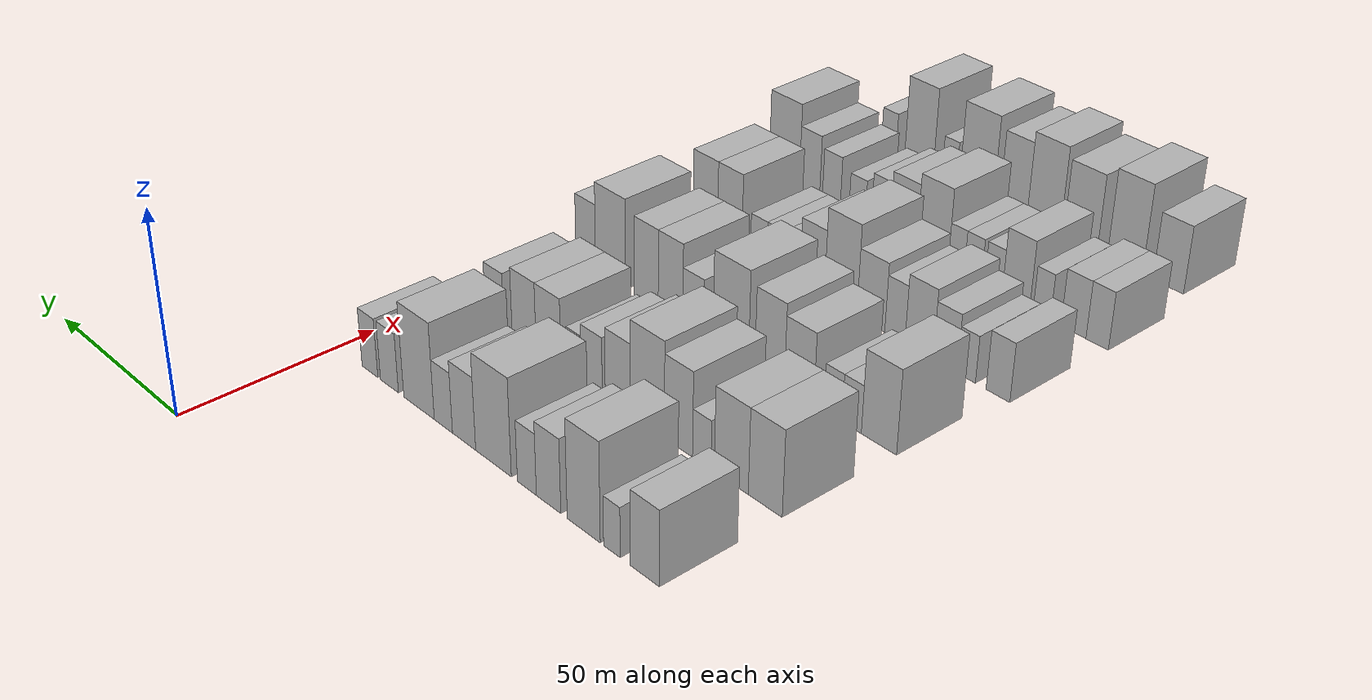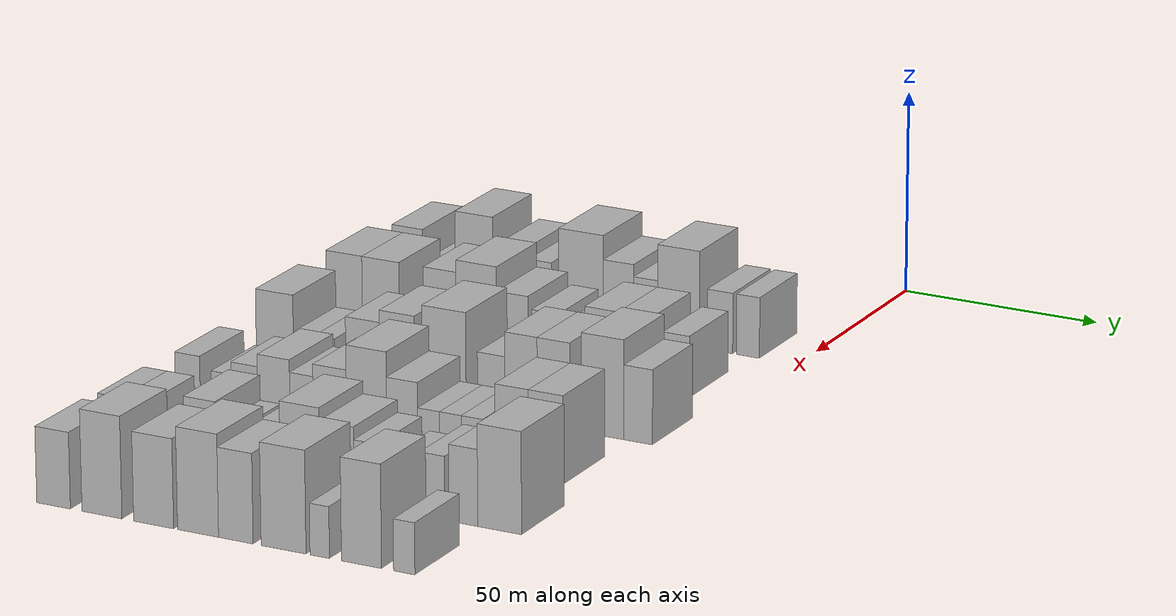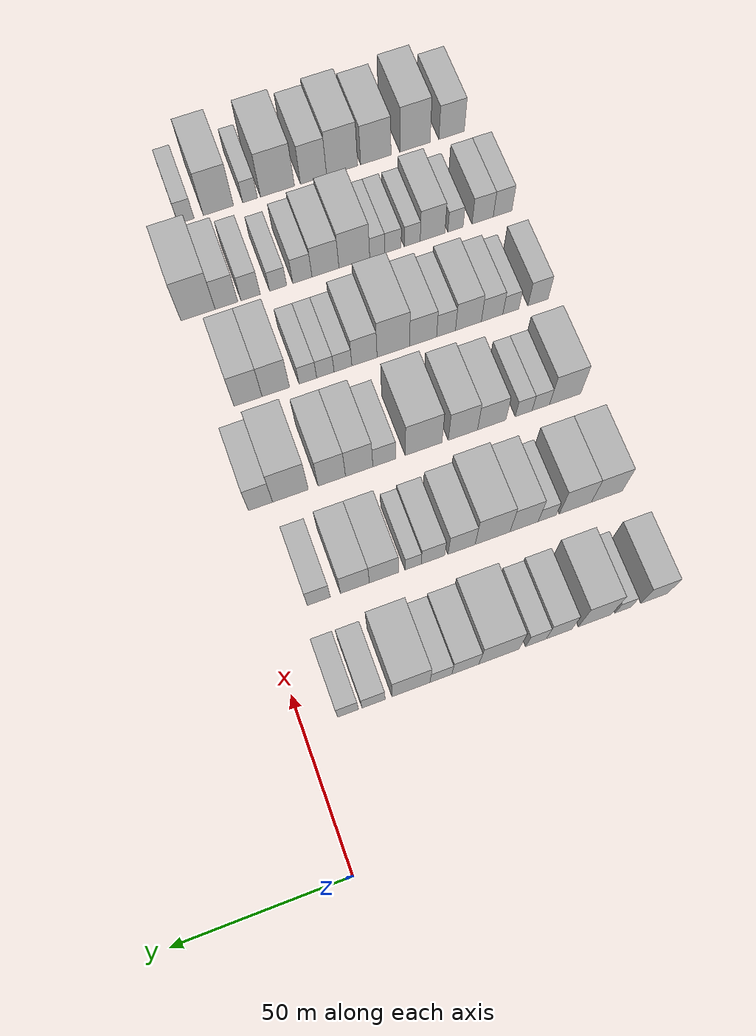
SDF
<sdf version="1.6">
 <world name="default">
  <model name="building_49">
   <static>1</static>
   <pose>50.0000 -104.2475 0 0.000000 0.000000 0.000000</pose>
   <link name="link">
    <pose>0 0 9.00 0 0 0</pose>
    <collision name="collision"><geometry><box><size>20.0000 8.3414 18.0000</size></box></geometry></collision>
    <visual name="visual">
     <cast_shadows>0</cast_shadows>
     <geometry><box><size>20.0000 8.3414 18.0000</size></box></geometry>
     <material>
      <script>
       <uri>model://HANNAS_wall/materials/scripts</uri>
       <uri>model://HANNAS_wall/materials/textures</uri>
       <name>vrc/HANNAS_wall</name>
      </script>
     </material>
    </visual>
   </link>
  </model>
  <model name="building_50">
   <static>1</static>
   <pose>50.0000 -94.6067 0 0.000000 0.000000 0.000000</pose>
   <link name="link">
    <pose>0 0 6.00 0 0 0</pose>
    <collision name="collision"><geometry><box><size>20.0000 4.9403 12.0000</size></box></geometry></collision>
    <visual name="visual">
     <cast_shadows>0</cast_shadows>
     <geometry><box><size>20.0000 4.9403 12.0000</size></box></geometry>
     <material>
      <script>
       <uri>model://HANNAS_wall/materials/scripts</uri>
       <uri>model://HANNAS_wall/materials/textures</uri>
       <name>vrc/HANNAS_wall</name>
      </script>
     </material>
    </visual>
   </link>
  </model>
  <model name="building_51">
   <static>1</static>
   <pose>50.0000 -86.0847 0 0.000000 0.000000 0.000000</pose>
   <link name="link">
    <pose>0 0 12.00 0 0 0</pose>
    <collision name="collision"><geometry><box><size>20.0000 10.1037 24.0000</size></box></geometry></collision>
    <visual name="visual">
     <cast_shadows>0</cast_shadows>
     <geometry><box><size>20.0000 10.1037 24.0000</size></box></geometry>
     <material>
      <script>
       <uri>model://HANNAS_wall/materials/scripts</uri>
       <uri>model://HANNAS_wall/materials/textures</uri>
       <name>vrc/HANNAS_wall</name>
      </script>
     </material>
    </visual>
   </link>
  </model>
  <model name="building_52">
   <static>1</static>
   <pose>50.0000 -75.1629 0 0.000000 0.000000 0.000000</pose>
   <link name="link">
    <pose>0 0 9.00 0 0 0</pose>
    <collision name="collision"><geometry><box><size>20.0000 7.7400 18.0000</size></box></geometry></collision>
    <visual name="visual">
     <cast_shadows>0</cast_shadows>
     <geometry><box><size>20.0000 7.7400 18.0000</size></box></geometry>
     <material>
      <script>
       <uri>model://HANNAS_wall/materials/scripts</uri>
       <uri>model://HANNAS_wall/materials/textures</uri>
       <name>vrc/HANNAS_wall</name>
      </script>
     </material>
    </visual>
   </link>
  </model>
  <model name="building_53">
   <static>1</static>
   <pose>50.0000 -68.2267 0 0.000000 0.000000 0.000000</pose>
   <link name="link">
    <pose>0 0 7.50 0 0 0</pose>
    <collision name="collision"><geometry><box><size>20.0000 6.1323 15.0000</size></box></geometry></collision>
    <visual name="visual">
     <cast_shadows>0</cast_shadows>
     <geometry><box><size>20.0000 6.1323 15.0000</size></box></geometry>
     <material>
      <script>
       <uri>model://HANNAS_wall/materials/scripts</uri>
       <uri>model://HANNAS_wall/materials/textures</uri>
       <name>vrc/HANNAS_wall</name>
      </script>
     </material>
    </visual>
   </link>
  </model>
  <model name="building_54">
   <static>1</static>
   <pose>50.0000 -57.1812 0 0.000000 0.000000 0.000000</pose>
   <link name="link">
    <pose>0 0 12.00 0 0 0</pose>
    <collision name="collision"><geometry><box><size>20.0000 11.9588 24.0000</size></box></geometry></collision>
    <visual name="visual">
     <cast_shadows>0</cast_shadows>
     <geometry><box><size>20.0000 11.9588 24.0000</size></box></geometry>
     <material>
      <script>
       <uri>model://HANNAS_wall/materials/scripts</uri>
       <uri>model://HANNAS_wall/materials/textures</uri>
       <name>vrc/HANNAS_wall</name>
      </script>
     </material>
    </visual>
   </link>
  </model>
  <model name="building_55">
   <static>1</static>
   <pose>50.0000 -47.1897 0 0.000000 0.000000 0.000000</pose>
   <link name="link">
    <pose>0 0 9.00 0 0 0</pose>
    <collision name="collision"><geometry><box><size>20.0000 8.0243 18.0000</size></box></geometry></collision>
    <visual name="visual">
     <cast_shadows>0</cast_shadows>
     <geometry><box><size>20.0000 8.0243 18.0000</size></box></geometry>
     <material>
      <script>
       <uri>model://HANNAS_wall/materials/scripts</uri>
       <uri>model://HANNAS_wall/materials/textures</uri>
       <name>vrc/HANNAS_wall</name>
      </script>
     </material>
    </visual>
   </link>
  </model>
  <model name="building_56">
   <static>1</static>
   <pose>50.0000 -39.9663 0 0.000000 0.000000 0.000000</pose>
   <link name="link">
    <pose>0 0 7.50 0 0 0</pose>
    <collision name="collision"><geometry><box><size>20.0000 6.4225 15.0000</size></box></geometry></collision>
    <visual name="visual">
     <cast_shadows>0</cast_shadows>
     <geometry><box><size>20.0000 6.4225 15.0000</size></box></geometry>
     <material>
      <script>
       <uri>model://HANNAS_wall/materials/scripts</uri>
       <uri>model://HANNAS_wall/materials/textures</uri>
       <name>vrc/HANNAS_wall</name>
      </script>
     </material>
    </visual>
   </link>
  </model>
  <model name="building_57">
   <static>1</static>
   <pose>50.0000 -31.2169 0 0.000000 0.000000 0.000000</pose>
   <link name="link">
    <pose>0 0 12.00 0 0 0</pose>
    <collision name="collision"><geometry><box><size>20.0000 11.0762 24.0000</size></box></geometry></collision>
    <visual name="visual">
     <cast_shadows>0</cast_shadows>
     <geometry><box><size>20.0000 11.0762 24.0000</size></box></geometry>
     <material>
      <script>
       <uri>model://HANNAS_wall/materials/scripts</uri>
       <uri>model://HANNAS_wall/materials/textures</uri>
       <name>vrc/HANNAS_wall</name>
      </script>
     </material>
    </visual>
   </link>
  </model>
  <model name="building_58">
   <static>1</static>
   <pose>50.0000 -20.3244 0 0.000000 0.000000 0.000000</pose>
   <link name="link">
    <pose>0 0 7.50 0 0 0</pose>
    <collision name="collision"><geometry><box><size>20.0000 6.7090 15.0000</size></box></geometry></collision>
    <visual name="visual">
     <cast_shadows>0</cast_shadows>
     <geometry><box><size>20.0000 6.7090 15.0000</size></box></geometry>
     <material>
      <script>
       <uri>model://HANNAS_wall/materials/scripts</uri>
       <uri>model://HANNAS_wall/materials/textures</uri>
       <name>vrc/HANNAS_wall</name>
      </script>
     </material>
    </visual>
   </link>
  </model>
  <model name="building_59">
   <static>1</static>
   <pose>50.0000 -12.9591 0 0.000000 0.000000 0.000000</pose>
   <link name="link">
    <pose>0 0 7.50 0 0 0</pose>
    <collision name="collision"><geometry><box><size>20.0000 6.0215 15.0000</size></box></geometry></collision>
    <visual name="visual">
     <cast_shadows>0</cast_shadows>
     <geometry><box><size>20.0000 6.0215 15.0000</size></box></geometry>
     <material>
      <script>
       <uri>model://HANNAS_wall/materials/scripts</uri>
       <uri>model://HANNAS_wall/materials/textures</uri>
       <name>vrc/HANNAS_wall</name>
      </script>
     </material>
    </visual>
   </link>
  </model>
  <model name="building_168">
   <static>1</static>
   <pose>82.0000 -103.5564 0 0.000000 0.000000 0.000000</pose>
   <link name="link">
    <pose>0 0 10.50 0 0 0</pose>
    <collision name="collision"><geometry><box><size>20.0000 9.7104 21.0000</size></box></geometry></collision>
    <visual name="visual">
     <cast_shadows>0</cast_shadows>
     <geometry><box><size>20.0000 9.7104 21.0000</size></box></geometry>
     <material>
      <script>
       <uri>model://HANNAS_wall/materials/scripts</uri>
       <uri>model://HANNAS_wall/materials/textures</uri>
       <name>vrc/HANNAS_wall</name>
      </script>
     </material>
    </visual>
   </link>
  </model>
  <model name="building_169">
   <static>1</static>
   <pose>82.0000 -93.7058 0 0.000000 0.000000 0.000000</pose>
   <link name="link">
    <pose>0 0 10.50 0 0 0</pose>
    <collision name="collision"><geometry><box><size>20.0000 9.9907 21.0000</size></box></geometry></collision>
    <visual name="visual">
     <cast_shadows>0</cast_shadows>
     <geometry><box><size>20.0000 9.9907 21.0000</size></box></geometry>
     <material>
      <script>
       <uri>model://HANNAS_wall/materials/scripts</uri>
       <uri>model://HANNAS_wall/materials/textures</uri>
       <name>vrc/HANNAS_wall</name>
      </script>
     </material>
    </visual>
   </link>
  </model>
  <model name="building_170">
   <static>1</static>
   <pose>82.0000 -84.9278 0 0.000000 0.000000 0.000000</pose>
   <link name="link">
    <pose>0 0 6.00 0 0 0</pose>
    <collision name="collision"><geometry><box><size>20.0000 5.5653 12.0000</size></box></geometry></collision>
    <visual name="visual">
     <cast_shadows>0</cast_shadows>
     <geometry><box><size>20.0000 5.5653 12.0000</size></box></geometry>
     <material>
      <script>
       <uri>model://HANNAS_wall/materials/scripts</uri>
       <uri>model://HANNAS_wall/materials/textures</uri>
       <name>vrc/HANNAS_wall</name>
      </script>
     </material>
    </visual>
   </link>
  </model>
  <model name="building_171">
   <static>1</static>
   <pose>82.0000 -77.8008 0 0.000000 0.000000 0.000000</pose>
   <link name="link">
    <pose>0 0 10.50 0 0 0</pose>
    <collision name="collision"><geometry><box><size>20.0000 8.6886 21.0000</size></box></geometry></collision>
    <visual name="visual">
     <cast_shadows>0</cast_shadows>
     <geometry><box><size>20.0000 8.6886 21.0000</size></box></geometry>
     <material>
      <script>
       <uri>model://HANNAS_wall/materials/scripts</uri>
       <uri>model://HANNAS_wall/materials/textures</uri>
       <name>vrc/HANNAS_wall</name>
      </script>
     </material>
    </visual>
   </link>
  </model>
  <model name="building_172">
   <static>1</static>
   <pose>82.0000 -68.0688 0 0.000000 0.000000 0.000000</pose>
   <link name="link">
    <pose>0 0 12.00 0 0 0</pose>
    <collision name="collision"><geometry><box><size>20.0000 10.7755 24.0000</size></box></geometry></collision>
    <visual name="visual">
     <cast_shadows>0</cast_shadows>
     <geometry><box><size>20.0000 10.7755 24.0000</size></box></geometry>
     <material>
      <script>
       <uri>model://HANNAS_wall/materials/scripts</uri>
       <uri>model://HANNAS_wall/materials/textures</uri>
       <name>vrc/HANNAS_wall</name>
      </script>
     </material>
    </visual>
   </link>
  </model>
  <model name="building_173">
   <static>1</static>
   <pose>82.0000 -58.5454 0 0.000000 0.000000 0.000000</pose>
   <link name="link">
    <pose>0 0 9.00 0 0 0</pose>
    <collision name="collision"><geometry><box><size>20.0000 8.2712 18.0000</size></box></geometry></collision>
    <visual name="visual">
     <cast_shadows>0</cast_shadows>
     <geometry><box><size>20.0000 8.2712 18.0000</size></box></geometry>
     <material>
      <script>
       <uri>model://HANNAS_wall/materials/scripts</uri>
       <uri>model://HANNAS_wall/materials/textures</uri>
       <name>vrc/HANNAS_wall</name>
      </script>
     </material>
    </visual>
   </link>
  </model>
  <model name="building_174">
   <static>1</static>
   <pose>82.0000 -49.8387 0 0.000000 0.000000 0.000000</pose>
   <link name="link">
    <pose>0 0 7.50 0 0 0</pose>
    <collision name="collision"><geometry><box><size>20.0000 7.1422 15.0000</size></box></geometry></collision>
    <visual name="visual">
     <cast_shadows>0</cast_shadows>
     <geometry><box><size>20.0000 7.1422 15.0000</size></box></geometry>
     <material>
      <script>
       <uri>model://HANNAS_wall/materials/scripts</uri>
       <uri>model://HANNAS_wall/materials/textures</uri>
       <name>vrc/HANNAS_wall</name>
      </script>
     </material>
    </visual>
   </link>
  </model>
  <model name="building_175">
   <static>1</static>
   <pose>82.0000 -43.8366 0 0.000000 0.000000 0.000000</pose>
   <link name="link">
    <pose>0 0 6.00 0 0 0</pose>
    <collision name="collision"><geometry><box><size>20.0000 4.8619 12.0000</size></box></geometry></collision>
    <visual name="visual">
     <cast_shadows>0</cast_shadows>
     <geometry><box><size>20.0000 4.8619 12.0000</size></box></geometry>
     <material>
      <script>
       <uri>model://HANNAS_wall/materials/scripts</uri>
       <uri>model://HANNAS_wall/materials/textures</uri>
       <name>vrc/HANNAS_wall</name>
      </script>
     </material>
    </visual>
   </link>
  </model>
  <model name="building_176">
   <static>1</static>
   <pose>82.0000 -35.0411 0 0.000000 0.000000 0.000000</pose>
   <link name="link">
    <pose>0 0 9.00 0 0 0</pose>
    <collision name="collision"><geometry><box><size>20.0000 8.7293 18.0000</size></box></geometry></collision>
    <visual name="visual">
     <cast_shadows>0</cast_shadows>
     <geometry><box><size>20.0000 8.7293 18.0000</size></box></geometry>
     <material>
      <script>
       <uri>model://HANNAS_wall/materials/scripts</uri>
       <uri>model://HANNAS_wall/materials/textures</uri>
       <name>vrc/HANNAS_wall</name>
      </script>
     </material>
    </visual>
   </link>
  </model>
  <model name="building_177">
   <static>1</static>
   <pose>82.0000 -26.3602 0 0.000000 0.000000 0.000000</pose>
   <link name="link">
    <pose>0 0 9.00 0 0 0</pose>
    <collision name="collision"><geometry><box><size>20.0000 8.6325 18.0000</size></box></geometry></collision>
    <visual name="visual">
     <cast_shadows>0</cast_shadows>
     <geometry><box><size>20.0000 8.6325 18.0000</size></box></geometry>
     <material>
      <script>
       <uri>model://HANNAS_wall/materials/scripts</uri>
       <uri>model://HANNAS_wall/materials/textures</uri>
       <name>vrc/HANNAS_wall</name>
      </script>
     </material>
    </visual>
   </link>
  </model>
  <model name="building_178">
   <static>1</static>
   <pose>82.0000 -15.6247 0 0.000000 0.000000 0.000000</pose>
   <link name="link">
    <pose>0 0 7.50 0 0 0</pose>
    <collision name="collision"><geometry><box><size>20.0000 6.8386 15.0000</size></box></geometry></collision>
    <visual name="visual">
     <cast_shadows>0</cast_shadows>
     <geometry><box><size>20.0000 6.8386 15.0000</size></box></geometry>
     <material>
      <script>
       <uri>model://HANNAS_wall/materials/scripts</uri>
       <uri>model://HANNAS_wall/materials/textures</uri>
       <name>vrc/HANNAS_wall</name>
      </script>
     </material>
    </visual>
   </link>
  </model>
  <model name="building_283">
   <static>1</static>
   <pose>114.0000 -103.9990 0 0.000000 0.000000 0.000000</pose>
   <link name="link">
    <pose>0 0 10.50 0 0 0</pose>
    <collision name="collision"><geometry><box><size>20.0000 9.9668 21.0000</size></box></geometry></collision>
    <visual name="visual">
     <cast_shadows>0</cast_shadows>
     <geometry><box><size>20.0000 9.9668 21.0000</size></box></geometry>
     <material>
      <script>
       <uri>model://HANNAS_wall/materials/scripts</uri>
       <uri>model://HANNAS_wall/materials/textures</uri>
       <name>vrc/HANNAS_wall</name>
      </script>
     </material>
    </visual>
   </link>
  </model>
  <model name="building_284">
   <static>1</static>
   <pose>114.0000 -96.2114 0 0.000000 0.000000 0.000000</pose>
   <link name="link">
    <pose>0 0 6.00 0 0 0</pose>
    <collision name="collision"><geometry><box><size>20.0000 5.6083 12.0000</size></box></geometry></collision>
    <visual name="visual">
     <cast_shadows>0</cast_shadows>
     <geometry><box><size>20.0000 5.6083 12.0000</size></box></geometry>
     <material>
      <script>
       <uri>model://HANNAS_wall/materials/scripts</uri>
       <uri>model://HANNAS_wall/materials/textures</uri>
       <name>vrc/HANNAS_wall</name>
      </script>
     </material>
    </visual>
   </link>
  </model>
  <model name="building_285">
   <static>1</static>
   <pose>114.0000 -90.7280 0 0.000000 0.000000 0.000000</pose>
   <link name="link">
    <pose>0 0 6.00 0 0 0</pose>
    <collision name="collision"><geometry><box><size>20.0000 5.3585 12.0000</size></box></geometry></collision>
    <visual name="visual">
     <cast_shadows>0</cast_shadows>
     <geometry><box><size>20.0000 5.3585 12.0000</size></box></geometry>
     <material>
      <script>
       <uri>model://HANNAS_wall/materials/scripts</uri>
       <uri>model://HANNAS_wall/materials/textures</uri>
       <name>vrc/HANNAS_wall</name>
      </script>
     </material>
    </visual>
   </link>
  </model>
  <model name="building_286">
   <static>1</static>
   <pose>114.0000 -80.5575 0 0.000000 0.000000 0.000000</pose>
   <link name="link">
    <pose>0 0 9.00 0 0 0</pose>
    <collision name="collision"><geometry><box><size>20.0000 8.9825 18.0000</size></box></geometry></collision>
    <visual name="visual">
     <cast_shadows>0</cast_shadows>
     <geometry><box><size>20.0000 8.9825 18.0000</size></box></geometry>
     <material>
      <script>
       <uri>model://HANNAS_wall/materials/scripts</uri>
       <uri>model://HANNAS_wall/materials/textures</uri>
       <name>vrc/HANNAS_wall</name>
      </script>
     </material>
    </visual>
   </link>
  </model>
  <model name="building_287">
   <static>1</static>
   <pose>114.0000 -71.4640 0 0.000000 0.000000 0.000000</pose>
   <link name="link">
    <pose>0 0 10.50 0 0 0</pose>
    <collision name="collision"><geometry><box><size>20.0000 9.2046 21.0000</size></box></geometry></collision>
    <visual name="visual">
     <cast_shadows>0</cast_shadows>
     <geometry><box><size>20.0000 9.2046 21.0000</size></box></geometry>
     <material>
      <script>
       <uri>model://HANNAS_wall/materials/scripts</uri>
       <uri>model://HANNAS_wall/materials/textures</uri>
       <name>vrc/HANNAS_wall</name>
      </script>
     </material>
    </visual>
   </link>
  </model>
  <model name="building_288">
   <static>1</static>
   <pose>114.0000 -59.1335 0 0.000000 0.000000 0.000000</pose>
   <link name="link">
    <pose>0 0 12.00 0 0 0</pose>
    <collision name="collision"><geometry><box><size>20.0000 11.4564 24.0000</size></box></geometry></collision>
    <visual name="visual">
     <cast_shadows>0</cast_shadows>
     <geometry><box><size>20.0000 11.4564 24.0000</size></box></geometry>
     <material>
      <script>
       <uri>model://HANNAS_wall/materials/scripts</uri>
       <uri>model://HANNAS_wall/materials/textures</uri>
       <name>vrc/HANNAS_wall</name>
      </script>
     </material>
    </visual>
   </link>
  </model>
  <model name="building_289">
   <static>1</static>
   <pose>114.0000 -46.8817 0 0.000000 0.000000 0.000000</pose>
   <link name="link">
    <pose>0 0 7.50 0 0 0</pose>
    <collision name="collision"><geometry><box><size>20.0000 7.0471 15.0000</size></box></geometry></collision>
    <visual name="visual">
     <cast_shadows>0</cast_shadows>
     <geometry><box><size>20.0000 7.0471 15.0000</size></box></geometry>
     <material>
      <script>
       <uri>model://HANNAS_wall/materials/scripts</uri>
       <uri>model://HANNAS_wall/materials/textures</uri>
       <name>vrc/HANNAS_wall</name>
      </script>
     </material>
    </visual>
   </link>
  </model>
  <model name="building_290">
   <static>1</static>
   <pose>114.0000 -39.1507 0 0.000000 0.000000 0.000000</pose>
   <link name="link">
    <pose>0 0 10.50 0 0 0</pose>
    <collision name="collision"><geometry><box><size>20.0000 8.4151 21.0000</size></box></geometry></collision>
    <visual name="visual">
     <cast_shadows>0</cast_shadows>
     <geometry><box><size>20.0000 8.4151 21.0000</size></box></geometry>
     <material>
      <script>
       <uri>model://HANNAS_wall/materials/scripts</uri>
       <uri>model://HANNAS_wall/materials/textures</uri>
       <name>vrc/HANNAS_wall</name>
      </script>
     </material>
    </visual>
   </link>
  </model>
  <model name="building_291">
   <static>1</static>
   <pose>114.0000 -30.7255 0 0.000000 0.000000 0.000000</pose>
   <link name="link">
    <pose>0 0 10.50 0 0 0</pose>
    <collision name="collision"><geometry><box><size>20.0000 8.4353 21.0000</size></box></geometry></collision>
    <visual name="visual">
     <cast_shadows>0</cast_shadows>
     <geometry><box><size>20.0000 8.4353 21.0000</size></box></geometry>
     <material>
      <script>
       <uri>model://HANNAS_wall/materials/scripts</uri>
       <uri>model://HANNAS_wall/materials/textures</uri>
       <name>vrc/HANNAS_wall</name>
      </script>
     </material>
    </visual>
   </link>
  </model>
  <model name="building_292">
   <static>1</static>
   <pose>114.0000 -18.0808 0 0.000000 0.000000 0.000000</pose>
   <link name="link">
    <pose>0 0 12.00 0 0 0</pose>
    <collision name="collision"><geometry><box><size>20.0000 10.8541 24.0000</size></box></geometry></collision>
    <visual name="visual">
     <cast_shadows>0</cast_shadows>
     <geometry><box><size>20.0000 10.8541 24.0000</size></box></geometry>
     <material>
      <script>
       <uri>model://HANNAS_wall/materials/scripts</uri>
       <uri>model://HANNAS_wall/materials/textures</uri>
       <name>vrc/HANNAS_wall</name>
      </script>
     </material>
    </visual>
   </link>
  </model>
  <model name="building_293">
   <static>1</static>
   <pose>114.0000 -9.0034 0 0.000000 0.000000 0.000000</pose>
   <link name="link">
    <pose>0 0 9.00 0 0 0</pose>
    <collision name="collision"><geometry><box><size>20.0000 7.3008 18.0000</size></box></geometry></collision>
    <visual name="visual">
     <cast_shadows>0</cast_shadows>
     <geometry><box><size>20.0000 7.3008 18.0000</size></box></geometry>
     <material>
      <script>
       <uri>model://HANNAS_wall/materials/scripts</uri>
       <uri>model://HANNAS_wall/materials/textures</uri>
       <name>vrc/HANNAS_wall</name>
      </script>
     </material>
    </visual>
   </link>
  </model>
  <model name="building_385">
   <static>1</static>
   <pose>146.0000 -108.5150 0 0.000000 0.000000 0.000000</pose>
   <link name="link">
    <pose>0 0 7.50 0 0 0</pose>
    <collision name="collision"><geometry><box><size>20.0000 6.6405 15.0000</size></box></geometry></collision>
    <visual name="visual">
     <cast_shadows>0</cast_shadows>
     <geometry><box><size>20.0000 6.6405 15.0000</size></box></geometry>
     <material>
      <script>
       <uri>model://HANNAS_wall/materials/scripts</uri>
       <uri>model://HANNAS_wall/materials/textures</uri>
       <name>vrc/HANNAS_wall</name>
      </script>
     </material>
    </visual>
   </link>
  </model>
  <model name="building_386">
   <static>1</static>
   <pose>146.0000 -99.5848 0 0.000000 0.000000 0.000000</pose>
   <link name="link">
    <pose>0 0 6.00 0 0 0</pose>
    <collision name="collision"><geometry><box><size>20.0000 5.2197 12.0000</size></box></geometry></collision>
    <visual name="visual">
     <cast_shadows>0</cast_shadows>
     <geometry><box><size>20.0000 5.2197 12.0000</size></box></geometry>
     <material>
      <script>
       <uri>model://HANNAS_wall/materials/scripts</uri>
       <uri>model://HANNAS_wall/materials/textures</uri>
       <name>vrc/HANNAS_wall</name>
      </script>
     </material>
    </visual>
   </link>
  </model>
  <model name="building_387">
   <static>1</static>
   <pose>146.0000 -93.4553 0 0.000000 0.000000 0.000000</pose>
   <link name="link">
    <pose>0 0 7.50 0 0 0</pose>
    <collision name="collision"><geometry><box><size>20.0000 7.0393 15.0000</size></box></geometry></collision>
    <visual name="visual">
     <cast_shadows>0</cast_shadows>
     <geometry><box><size>20.0000 7.0393 15.0000</size></box></geometry>
     <material>
      <script>
       <uri>model://HANNAS_wall/materials/scripts</uri>
       <uri>model://HANNAS_wall/materials/textures</uri>
       <name>vrc/HANNAS_wall</name>
      </script>
     </material>
    </visual>
   </link>
  </model>
  <model name="building_388">
   <static>1</static>
   <pose>146.0000 -85.7322 0 0.000000 0.000000 0.000000</pose>
   <link name="link">
    <pose>0 0 9.00 0 0 0</pose>
    <collision name="collision"><geometry><box><size>20.0000 8.4069 18.0000</size></box></geometry></collision>
    <visual name="visual">
     <cast_shadows>0</cast_shadows>
     <geometry><box><size>20.0000 8.4069 18.0000</size></box></geometry>
     <material>
      <script>
       <uri>model://HANNAS_wall/materials/scripts</uri>
       <uri>model://HANNAS_wall/materials/textures</uri>
       <name>vrc/HANNAS_wall</name>
      </script>
     </material>
    </visual>
   </link>
  </model>
  <model name="building_389">
   <static>1</static>
   <pose>146.0000 -78.4744 0 0.000000 0.000000 0.000000</pose>
   <link name="link">
    <pose>0 0 7.50 0 0 0</pose>
    <collision name="collision"><geometry><box><size>20.0000 6.1088 15.0000</size></box></geometry></collision>
    <visual name="visual">
     <cast_shadows>0</cast_shadows>
     <geometry><box><size>20.0000 6.1088 15.0000</size></box></geometry>
     <material>
      <script>
       <uri>model://HANNAS_wall/materials/scripts</uri>
       <uri>model://HANNAS_wall/materials/textures</uri>
       <name>vrc/HANNAS_wall</name>
      </script>
     </material>
    </visual>
   </link>
  </model>
  <model name="building_390">
   <static>1</static>
   <pose>146.0000 -71.0781 0 0.000000 0.000000 0.000000</pose>
   <link name="link">
    <pose>0 0 9.00 0 0 0</pose>
    <collision name="collision"><geometry><box><size>20.0000 8.6838 18.0000</size></box></geometry></collision>
    <visual name="visual">
     <cast_shadows>0</cast_shadows>
     <geometry><box><size>20.0000 8.6838 18.0000</size></box></geometry>
     <material>
      <script>
       <uri>model://HANNAS_wall/materials/scripts</uri>
       <uri>model://HANNAS_wall/materials/textures</uri>
       <name>vrc/HANNAS_wall</name>
      </script>
     </material>
    </visual>
   </link>
  </model>
  <model name="building_391">
   <static>1</static>
   <pose>146.0000 -61.5404 0 0.000000 0.000000 0.000000</pose>
   <link name="link">
    <pose>0 0 12.00 0 0 0</pose>
    <collision name="collision"><geometry><box><size>20.0000 10.3917 24.0000</size></box></geometry></collision>
    <visual name="visual">
     <cast_shadows>0</cast_shadows>
     <geometry><box><size>20.0000 10.3917 24.0000</size></box></geometry>
     <material>
      <script>
       <uri>model://HANNAS_wall/materials/scripts</uri>
       <uri>model://HANNAS_wall/materials/textures</uri>
       <name>vrc/HANNAS_wall</name>
      </script>
     </material>
    </visual>
   </link>
  </model>
  <model name="building_392">
   <static>1</static>
   <pose>146.0000 -52.3349 0 0.000000 0.000000 0.000000</pose>
   <link name="link">
    <pose>0 0 9.00 0 0 0</pose>
    <collision name="collision"><geometry><box><size>20.0000 8.0192 18.0000</size></box></geometry></collision>
    <visual name="visual">
     <cast_shadows>0</cast_shadows>
     <geometry><box><size>20.0000 8.0192 18.0000</size></box></geometry>
     <material>
      <script>
       <uri>model://HANNAS_wall/materials/scripts</uri>
       <uri>model://HANNAS_wall/materials/textures</uri>
       <name>vrc/HANNAS_wall</name>
      </script>
     </material>
    </visual>
   </link>
  </model>
  <model name="building_393">
   <static>1</static>
   <pose>146.0000 -45.5096 0 0.000000 0.000000 0.000000</pose>
   <link name="link">
    <pose>0 0 6.00 0 0 0</pose>
    <collision name="collision"><geometry><box><size>20.0000 5.6314 12.0000</size></box></geometry></collision>
    <visual name="visual">
     <cast_shadows>0</cast_shadows>
     <geometry><box><size>20.0000 5.6314 12.0000</size></box></geometry>
     <material>
      <script>
       <uri>model://HANNAS_wall/materials/scripts</uri>
       <uri>model://HANNAS_wall/materials/textures</uri>
       <name>vrc/HANNAS_wall</name>
      </script>
     </material>
    </visual>
   </link>
  </model>
  <model name="building_394">
   <static>1</static>
   <pose>146.0000 -39.9316 0 0.000000 0.000000 0.000000</pose>
   <link name="link">
    <pose>0 0 6.00 0 0 0</pose>
    <collision name="collision"><geometry><box><size>20.0000 5.5246 12.0000</size></box></geometry></collision>
    <visual name="visual">
     <cast_shadows>0</cast_shadows>
     <geometry><box><size>20.0000 5.5246 12.0000</size></box></geometry>
     <material>
      <script>
       <uri>model://HANNAS_wall/materials/scripts</uri>
       <uri>model://HANNAS_wall/materials/textures</uri>
       <name>vrc/HANNAS_wall</name>
      </script>
     </material>
    </visual>
   </link>
  </model>
  <model name="building_395">
   <static>1</static>
   <pose>146.0000 -34.4014 0 0.000000 0.000000 0.000000</pose>
   <link name="link">
    <pose>0 0 6.00 0 0 0</pose>
    <collision name="collision"><geometry><box><size>20.0000 5.5359 12.0000</size></box></geometry></collision>
    <visual name="visual">
     <cast_shadows>0</cast_shadows>
     <geometry><box><size>20.0000 5.5359 12.0000</size></box></geometry>
     <material>
      <script>
       <uri>model://HANNAS_wall/materials/scripts</uri>
       <uri>model://HANNAS_wall/materials/textures</uri>
       <name>vrc/HANNAS_wall</name>
      </script>
     </material>
    </visual>
   </link>
  </model>
  <model name="building_396">
   <static>1</static>
   <pose>146.0000 -24.3433 0 0.000000 0.000000 0.000000</pose>
   <link name="link">
    <pose>0 0 10.50 0 0 0</pose>
    <collision name="collision"><geometry><box><size>20.0000 8.5803 21.0000</size></box></geometry></collision>
    <visual name="visual">
     <cast_shadows>0</cast_shadows>
     <geometry><box><size>20.0000 8.5803 21.0000</size></box></geometry>
     <material>
      <script>
       <uri>model://HANNAS_wall/materials/scripts</uri>
       <uri>model://HANNAS_wall/materials/textures</uri>
       <name>vrc/HANNAS_wall</name>
      </script>
     </material>
    </visual>
   </link>
  </model>
  <model name="building_397">
   <static>1</static>
   <pose>146.0000 -15.6816 0 0.000000 0.000000 0.000000</pose>
   <link name="link">
    <pose>0 0 10.50 0 0 0</pose>
    <collision name="collision"><geometry><box><size>20.0000 8.7432 21.0000</size></box></geometry></collision>
    <visual name="visual">
     <cast_shadows>0</cast_shadows>
     <geometry><box><size>20.0000 8.7432 21.0000</size></box></geometry>
     <material>
      <script>
       <uri>model://HANNAS_wall/materials/scripts</uri>
       <uri>model://HANNAS_wall/materials/textures</uri>
       <name>vrc/HANNAS_wall</name>
      </script>
     </material>
    </visual>
   </link>
  </model>
  <model name="building_502">
   <static>1</static>
   <pose>178.0000 -109.7334 0 0.000000 0.000000 0.000000</pose>
   <link name="link">
    <pose>0 0 7.50 0 0 0</pose>
    <collision name="collision"><geometry><box><size>20.0000 6.2479 15.0000</size></box></geometry></collision>
    <visual name="visual">
     <cast_shadows>0</cast_shadows>
     <geometry><box><size>20.0000 6.2479 15.0000</size></box></geometry>
     <material>
      <script>
       <uri>model://HANNAS_wall/materials/scripts</uri>
       <uri>model://HANNAS_wall/materials/textures</uri>
       <name>vrc/HANNAS_wall</name>
      </script>
     </material>
    </visual>
   </link>
  </model>
  <model name="building_503">
   <static>1</static>
   <pose>178.0000 -103.0528 0 0.000000 0.000000 0.000000</pose>
   <link name="link">
    <pose>0 0 7.50 0 0 0</pose>
    <collision name="collision"><geometry><box><size>20.0000 7.1134 15.0000</size></box></geometry></collision>
    <visual name="visual">
     <cast_shadows>0</cast_shadows>
     <geometry><box><size>20.0000 7.1134 15.0000</size></box></geometry>
     <material>
      <script>
       <uri>model://HANNAS_wall/materials/scripts</uri>
       <uri>model://HANNAS_wall/materials/textures</uri>
       <name>vrc/HANNAS_wall</name>
      </script>
     </material>
    </visual>
   </link>
  </model>
  <model name="building_504">
   <static>1</static>
   <pose>178.0000 -93.9634 0 0.000000 0.000000 0.000000</pose>
   <link name="link">
    <pose>0 0 6.00 0 0 0</pose>
    <collision name="collision"><geometry><box><size>20.0000 5.0654 12.0000</size></box></geometry></collision>
    <visual name="visual">
     <cast_shadows>0</cast_shadows>
     <geometry><box><size>20.0000 5.0654 12.0000</size></box></geometry>
     <material>
      <script>
       <uri>model://HANNAS_wall/materials/scripts</uri>
       <uri>model://HANNAS_wall/materials/textures</uri>
       <name>vrc/HANNAS_wall</name>
      </script>
     </material>
    </visual>
   </link>
  </model>
  <model name="building_505">
   <static>1</static>
   <pose>178.0000 -86.3265 0 0.000000 0.000000 0.000000</pose>
   <link name="link">
    <pose>0 0 9.00 0 0 0</pose>
    <collision name="collision"><geometry><box><size>20.0000 8.2085 18.0000</size></box></geometry></collision>
    <visual name="visual">
     <cast_shadows>0</cast_shadows>
     <geometry><box><size>20.0000 8.2085 18.0000</size></box></geometry>
     <material>
      <script>
       <uri>model://HANNAS_wall/materials/scripts</uri>
       <uri>model://HANNAS_wall/materials/textures</uri>
       <name>vrc/HANNAS_wall</name>
      </script>
     </material>
    </visual>
   </link>
  </model>
  <model name="building_506">
   <static>1</static>
   <pose>178.0000 -79.5813 0 0.000000 0.000000 0.000000</pose>
   <link name="link">
    <pose>0 0 6.00 0 0 0</pose>
    <collision name="collision"><geometry><box><size>20.0000 5.2817 12.0000</size></box></geometry></collision>
    <visual name="visual">
     <cast_shadows>0</cast_shadows>
     <geometry><box><size>20.0000 5.2817 12.0000</size></box></geometry>
     <material>
      <script>
       <uri>model://HANNAS_wall/materials/scripts</uri>
       <uri>model://HANNAS_wall/materials/textures</uri>
       <name>vrc/HANNAS_wall</name>
      </script>
     </material>
    </visual>
   </link>
  </model>
  <model name="building_507">
   <static>1</static>
   <pose>178.0000 -73.2686 0 0.000000 0.000000 0.000000</pose>
   <link name="link">
    <pose>0 0 6.00 0 0 0</pose>
    <collision name="collision"><geometry><box><size>20.0000 5.3438 12.0000</size></box></geometry></collision>
    <visual name="visual">
     <cast_shadows>0</cast_shadows>
     <geometry><box><size>20.0000 5.3438 12.0000</size></box></geometry>
     <material>
      <script>
       <uri>model://HANNAS_wall/materials/scripts</uri>
       <uri>model://HANNAS_wall/materials/textures</uri>
       <name>vrc/HANNAS_wall</name>
      </script>
     </material>
    </visual>
   </link>
  </model>
  <model name="building_508">
   <static>1</static>
   <pose>178.0000 -68.0975 0 0.000000 0.000000 0.000000</pose>
   <link name="link">
    <pose>0 0 6.00 0 0 0</pose>
    <collision name="collision"><geometry><box><size>20.0000 4.9984 12.0000</size></box></geometry></collision>
    <visual name="visual">
     <cast_shadows>0</cast_shadows>
     <geometry><box><size>20.0000 4.9984 12.0000</size></box></geometry>
     <material>
      <script>
       <uri>model://HANNAS_wall/materials/scripts</uri>
       <uri>model://HANNAS_wall/materials/textures</uri>
       <name>vrc/HANNAS_wall</name>
      </script>
     </material>
    </visual>
   </link>
  </model>
  <model name="building_509">
   <static>1</static>
   <pose>178.0000 -60.5693 0 0.000000 0.000000 0.000000</pose>
   <link name="link">
    <pose>0 0 10.50 0 0 0</pose>
    <collision name="collision"><geometry><box><size>20.0000 10.0579 21.0000</size></box></geometry></collision>
    <visual name="visual">
     <cast_shadows>0</cast_shadows>
     <geometry><box><size>20.0000 10.0579 21.0000</size></box></geometry>
     <material>
      <script>
       <uri>model://HANNAS_wall/materials/scripts</uri>
       <uri>model://HANNAS_wall/materials/textures</uri>
       <name>vrc/HANNAS_wall</name>
      </script>
     </material>
    </visual>
   </link>
  </model>
  <model name="building_510">
   <static>1</static>
   <pose>178.0000 -51.1582 0 0.000000 0.000000 0.000000</pose>
   <link name="link">
    <pose>0 0 9.00 0 0 0</pose>
    <collision name="collision"><geometry><box><size>20.0000 8.7643 18.0000</size></box></geometry></collision>
    <visual name="visual">
     <cast_shadows>0</cast_shadows>
     <geometry><box><size>20.0000 8.7643 18.0000</size></box></geometry>
     <material>
      <script>
       <uri>model://HANNAS_wall/materials/scripts</uri>
       <uri>model://HANNAS_wall/materials/textures</uri>
       <name>vrc/HANNAS_wall</name>
      </script>
     </material>
    </visual>
   </link>
  </model>
  <model name="building_511">
   <static>1</static>
   <pose>178.0000 -43.6707 0 0.000000 0.000000 0.000000</pose>
   <link name="link">
    <pose>0 0 7.50 0 0 0</pose>
    <collision name="collision"><geometry><box><size>20.0000 6.2108 15.0000</size></box></geometry></collision>
    <visual name="visual">
     <cast_shadows>0</cast_shadows>
     <geometry><box><size>20.0000 6.2108 15.0000</size></box></geometry>
     <material>
      <script>
       <uri>model://HANNAS_wall/materials/scripts</uri>
       <uri>model://HANNAS_wall/materials/textures</uri>
       <name>vrc/HANNAS_wall</name>
      </script>
     </material>
    </visual>
   </link>
  </model>
  <model name="building_512">
   <static>1</static>
   <pose>178.0000 -35.8130 0 0.000000 0.000000 0.000000</pose>
   <link name="link">
    <pose>0 0 6.00 0 0 0</pose>
    <collision name="collision"><geometry><box><size>20.0000 5.5045 12.0000</size></box></geometry></collision>
    <visual name="visual">
     <cast_shadows>0</cast_shadows>
     <geometry><box><size>20.0000 5.5045 12.0000</size></box></geometry>
     <material>
      <script>
       <uri>model://HANNAS_wall/materials/scripts</uri>
       <uri>model://HANNAS_wall/materials/textures</uri>
       <name>vrc/HANNAS_wall</name>
      </script>
     </material>
    </visual>
   </link>
  </model>
  <model name="building_513">
   <static>1</static>
   <pose>178.0000 -26.9609 0 0.000000 0.000000 0.000000</pose>
   <link name="link">
    <pose>0 0 7.50 0 0 0</pose>
    <collision name="collision"><geometry><box><size>20.0000 6.1996 15.0000</size></box></geometry></collision>
    <visual name="visual">
     <cast_shadows>0</cast_shadows>
     <geometry><box><size>20.0000 6.1996 15.0000</size></box></geometry>
     <material>
      <script>
       <uri>model://HANNAS_wall/materials/scripts</uri>
       <uri>model://HANNAS_wall/materials/textures</uri>
       <name>vrc/HANNAS_wall</name>
      </script>
     </material>
    </visual>
   </link>
  </model>
  <model name="building_514">
   <static>1</static>
   <pose>178.0000 -19.2526 0 0.000000 0.000000 0.000000</pose>
   <link name="link">
    <pose>0 0 9.00 0 0 0</pose>
    <collision name="collision"><geometry><box><size>20.0000 7.2170 18.0000</size></box></geometry></collision>
    <visual name="visual">
     <cast_shadows>0</cast_shadows>
     <geometry><box><size>20.0000 7.2170 18.0000</size></box></geometry>
     <material>
      <script>
       <uri>model://HANNAS_wall/materials/scripts</uri>
       <uri>model://HANNAS_wall/materials/textures</uri>
       <name>vrc/HANNAS_wall</name>
      </script>
     </material>
    </visual>
   </link>
  </model>
  <model name="building_515">
   <static>1</static>
   <pose>178.0000 -10.1976 0 0.000000 0.000000 0.000000</pose>
   <link name="link">
    <pose>0 0 12.00 0 0 0</pose>
    <collision name="collision"><geometry><box><size>20.0000 10.8931 24.0000</size></box></geometry></collision>
    <visual name="visual">
     <cast_shadows>0</cast_shadows>
     <geometry><box><size>20.0000 10.8931 24.0000</size></box></geometry>
     <material>
      <script>
       <uri>model://HANNAS_wall/materials/scripts</uri>
       <uri>model://HANNAS_wall/materials/textures</uri>
       <name>vrc/HANNAS_wall</name>
      </script>
     </material>
    </visual>
   </link>
  </model>
  <model name="building_619">
   <static>1</static>
   <pose>210.0000 -105.0485 0 0.000000 0.000000 0.000000</pose>
   <link name="link">
    <pose>0 0 9.00 0 0 0</pose>
    <collision name="collision"><geometry><box><size>20.0000 8.7078 18.0000</size></box></geometry></collision>
    <visual name="visual">
     <cast_shadows>0</cast_shadows>
     <geometry><box><size>20.0000 8.7078 18.0000</size></box></geometry>
     <material>
      <script>
       <uri>model://HANNAS_wall/materials/scripts</uri>
       <uri>model://HANNAS_wall/materials/textures</uri>
       <name>vrc/HANNAS_wall</name>
      </script>
     </material>
    </visual>
   </link>
  </model>
  <model name="building_620">
   <static>1</static>
   <pose>210.0000 -92.5422 0 0.000000 0.000000 0.000000</pose>
   <link name="link">
    <pose>0 0 12.00 0 0 0</pose>
    <collision name="collision"><geometry><box><size>20.0000 10.3048 24.0000</size></box></geometry></collision>
    <visual name="visual">
     <cast_shadows>0</cast_shadows>
     <geometry><box><size>20.0000 10.3048 24.0000</size></box></geometry>
     <material>
      <script>
       <uri>model://HANNAS_wall/materials/scripts</uri>
       <uri>model://HANNAS_wall/materials/textures</uri>
       <name>vrc/HANNAS_wall</name>
      </script>
     </material>
    </visual>
   </link>
  </model>
  <model name="building_621">
   <static>1</static>
   <pose>210.0000 -79.2704 0 0.000000 0.000000 0.000000</pose>
   <link name="link">
    <pose>0 0 10.50 0 0 0</pose>
    <collision name="collision"><geometry><box><size>20.0000 10.2388 21.0000</size></box></geometry></collision>
    <visual name="visual">
     <cast_shadows>0</cast_shadows>
     <geometry><box><size>20.0000 10.2388 21.0000</size></box></geometry>
     <material>
      <script>
       <uri>model://HANNAS_wall/materials/scripts</uri>
       <uri>model://HANNAS_wall/materials/textures</uri>
       <name>vrc/HANNAS_wall</name>
      </script>
     </material>
    </visual>
   </link>
  </model>
  <model name="building_622">
   <static>1</static>
   <pose>210.0000 -67.9414 0 0.000000 0.000000 0.000000</pose>
   <link name="link">
    <pose>0 0 12.00 0 0 0</pose>
    <collision name="collision"><geometry><box><size>20.0000 10.4192 24.0000</size></box></geometry></collision>
    <visual name="visual">
     <cast_shadows>0</cast_shadows>
     <geometry><box><size>20.0000 10.4192 24.0000</size></box></geometry>
     <material>
      <script>
       <uri>model://HANNAS_wall/materials/scripts</uri>
       <uri>model://HANNAS_wall/materials/textures</uri>
       <name>vrc/HANNAS_wall</name>
      </script>
     </material>
    </visual>
   </link>
  </model>
  <model name="building_623">
   <static>1</static>
   <pose>210.0000 -58.3580 0 0.000000 0.000000 0.000000</pose>
   <link name="link">
    <pose>0 0 10.50 0 0 0</pose>
    <collision name="collision"><geometry><box><size>20.0000 8.7475 21.0000</size></box></geometry></collision>
    <visual name="visual">
     <cast_shadows>0</cast_shadows>
     <geometry><box><size>20.0000 8.7475 21.0000</size></box></geometry>
     <material>
      <script>
       <uri>model://HANNAS_wall/materials/scripts</uri>
       <uri>model://HANNAS_wall/materials/textures</uri>
       <name>vrc/HANNAS_wall</name>
      </script>
     </material>
    </visual>
   </link>
  </model>
  <model name="building_624">
   <static>1</static>
   <pose>210.0000 -46.3496 0 0.000000 0.000000 0.000000</pose>
   <link name="link">
    <pose>0 0 12.00 0 0 0</pose>
    <collision name="collision"><geometry><box><size>20.0000 11.2693 24.0000</size></box></geometry></collision>
    <visual name="visual">
     <cast_shadows>0</cast_shadows>
     <geometry><box><size>20.0000 11.2693 24.0000</size></box></geometry>
     <material>
      <script>
       <uri>model://HANNAS_wall/materials/scripts</uri>
       <uri>model://HANNAS_wall/materials/textures</uri>
       <name>vrc/HANNAS_wall</name>
      </script>
     </material>
    </visual>
   </link>
  </model>
  <model name="building_625">
   <static>1</static>
   <pose>210.0000 -37.2845 0 0.000000 0.000000 0.000000</pose>
   <link name="link">
    <pose>0 0 6.00 0 0 0</pose>
    <collision name="collision"><geometry><box><size>20.0000 4.8608 12.0000</size></box></geometry></collision>
    <visual name="visual">
     <cast_shadows>0</cast_shadows>
     <geometry><box><size>20.0000 4.8608 12.0000</size></box></geometry>
     <material>
      <script>
       <uri>model://HANNAS_wall/materials/scripts</uri>
       <uri>model://HANNAS_wall/materials/textures</uri>
       <name>vrc/HANNAS_wall</name>
      </script>
     </material>
    </visual>
   </link>
  </model>
  <model name="building_626">
   <static>1</static>
   <pose>210.0000 -26.8923 0 0.000000 0.000000 0.000000</pose>
   <link name="link">
    <pose>0 0 12.00 0 0 0</pose>
    <collision name="collision"><geometry><box><size>20.0000 9.9235 24.0000</size></box></geometry></collision>
    <visual name="visual">
     <cast_shadows>0</cast_shadows>
     <geometry><box><size>20.0000 9.9235 24.0000</size></box></geometry>
     <material>
      <script>
       <uri>model://HANNAS_wall/materials/scripts</uri>
       <uri>model://HANNAS_wall/materials/textures</uri>
       <name>vrc/HANNAS_wall</name>
      </script>
     </material>
    </visual>
   </link>
  </model>
  <model name="building_627">
   <static>1</static>
   <pose>210.0000 -16.3005 0 0.000000 0.000000 0.000000</pose>
   <link name="link">
    <pose>0 0 6.00 0 0 0</pose>
    <collision name="collision"><geometry><box><size>20.0000 5.2602 12.0000</size></box></geometry></collision>
    <visual name="visual">
     <cast_shadows>0</cast_shadows>
     <geometry><box><size>20.0000 5.2602 12.0000</size></box></geometry>
     <material>
      <script>
       <uri>model://HANNAS_wall/materials/scripts</uri>
       <uri>model://HANNAS_wall/materials/textures</uri>
       <name>vrc/HANNAS_wall</name>
      </script>
     </material>
    </visual>
   </link>
  </model>
 </world>
</sdf>
